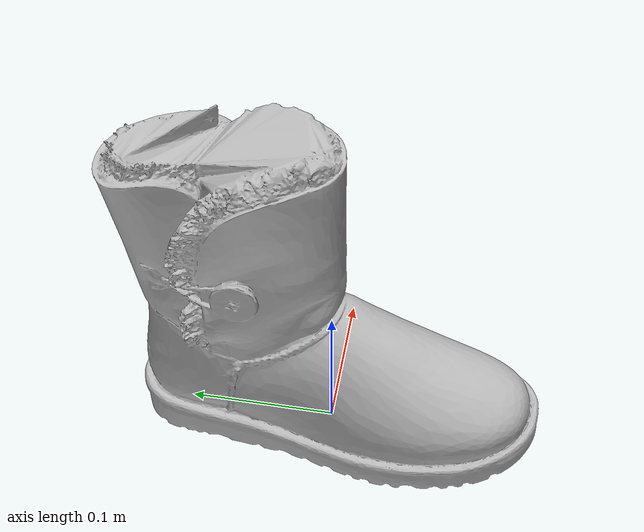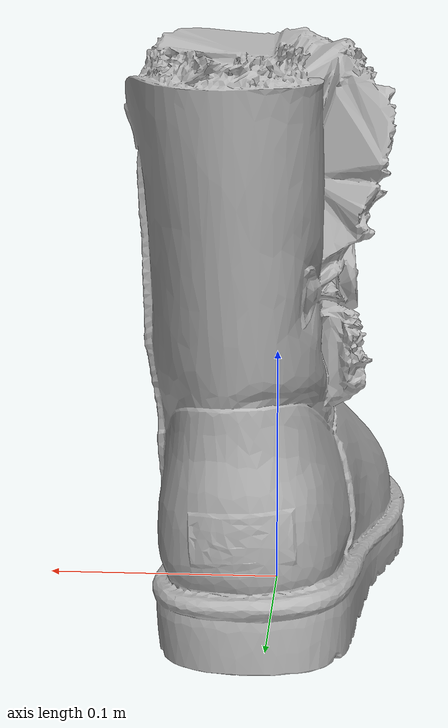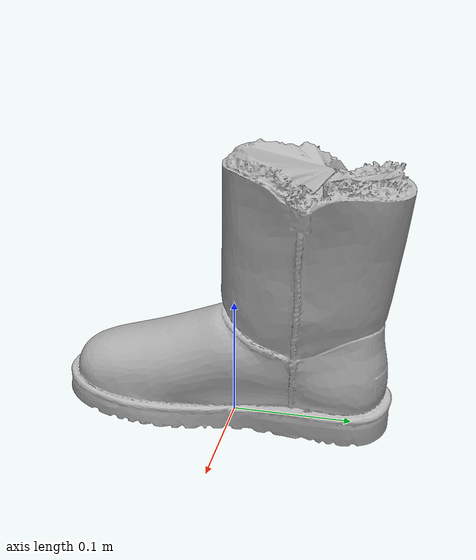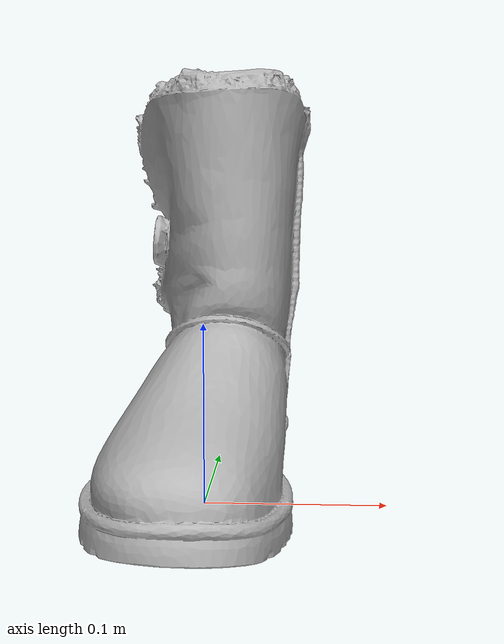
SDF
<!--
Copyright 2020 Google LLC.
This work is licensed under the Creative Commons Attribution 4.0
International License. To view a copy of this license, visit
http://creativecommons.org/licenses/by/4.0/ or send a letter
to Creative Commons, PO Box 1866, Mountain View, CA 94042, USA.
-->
<?xml version="1.0" ?>
<sdf version="1.6">
  <model name="UGG_Bailey_Button_Womens_Boots_Black_7">
    <link name="link_0">
      <visual name="visual">
        <geometry>
          <mesh>
            <uri>meshes/model.obj</uri>
          </mesh>
        </geometry>
      </visual>
      <collision name="collision_0">
        <geometry>
          <mesh>
            <uri>meshes/model.obj</uri>
          </mesh>
        </geometry>
      </collision>
    </link>
  </model>
</sdf>
